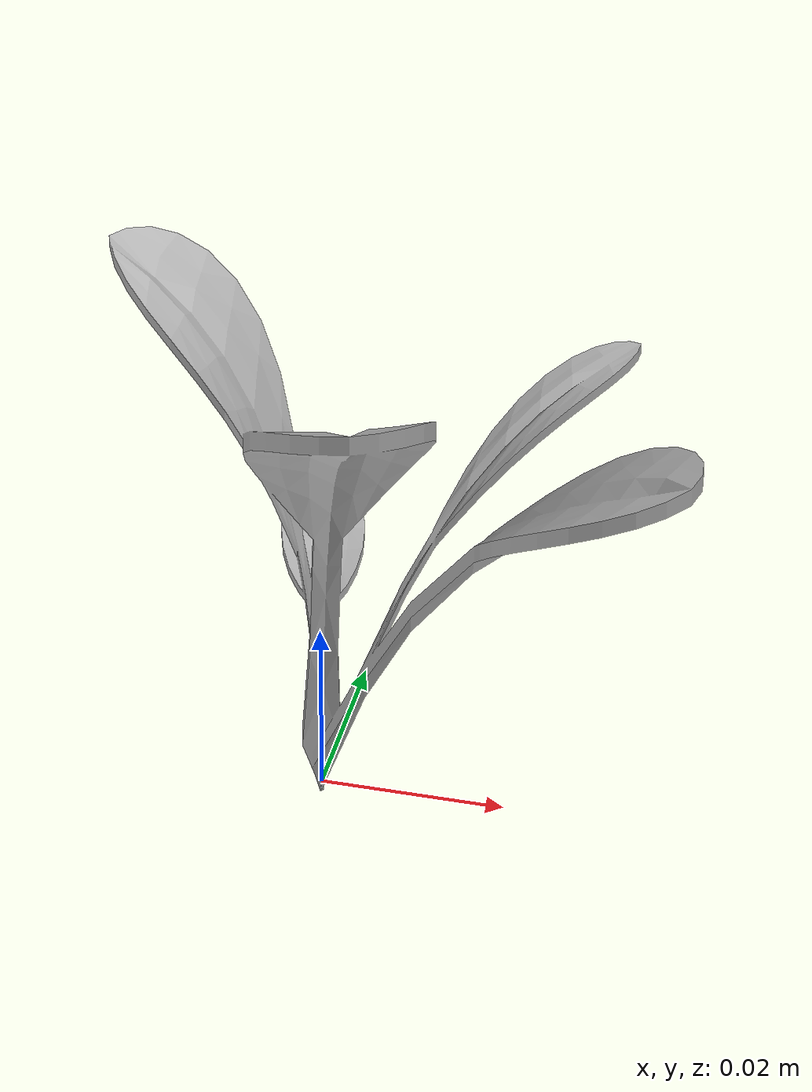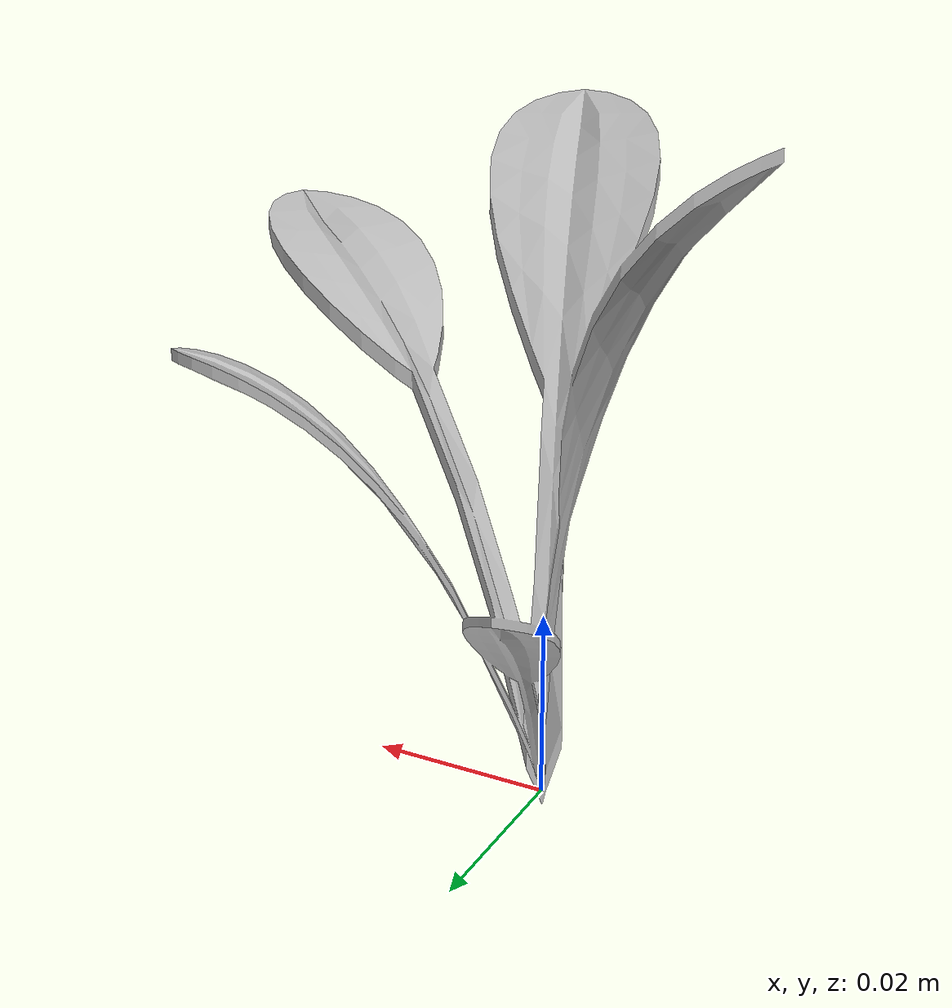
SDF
<sdf version="1.6">
  <model name="sugar_beet_47">
    <static>true</static>
    <link name="body">
      <visual name="visual">
        <geometry>
          <mesh>
            <uri>file:///sugar_beet_47/media/sugar_beet.dae</uri>
          </mesh>
        </geometry>
      </visual>
    </link>
  </model>
</sdf>
